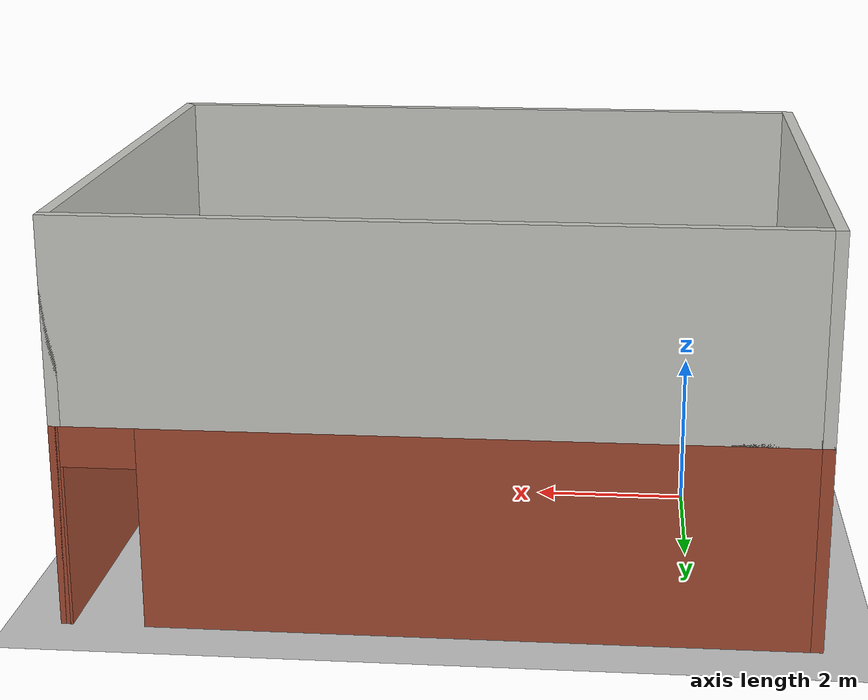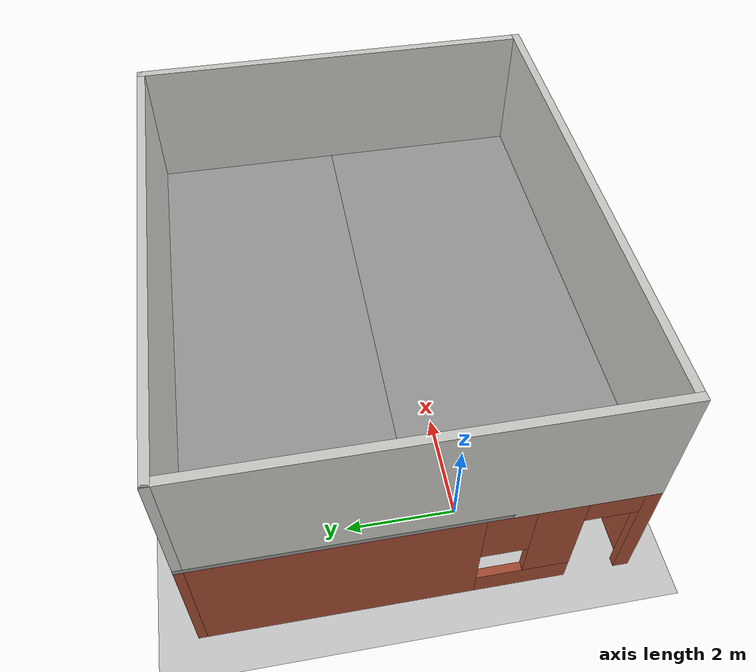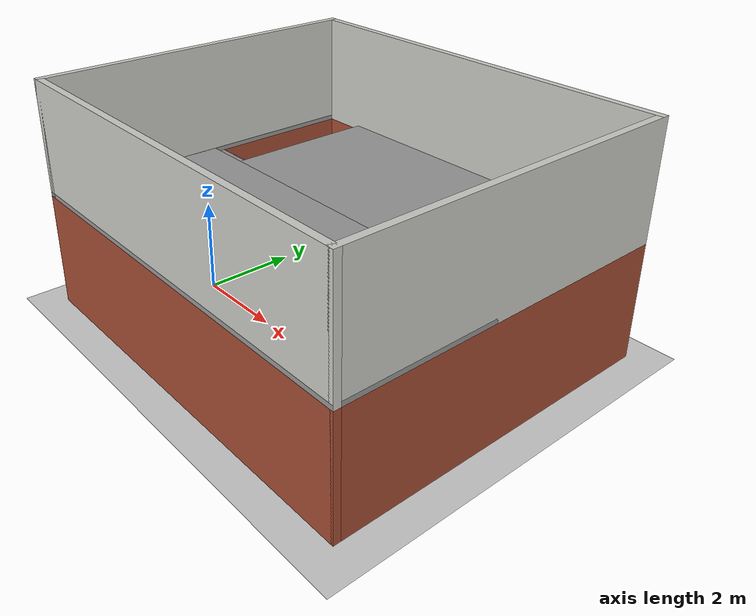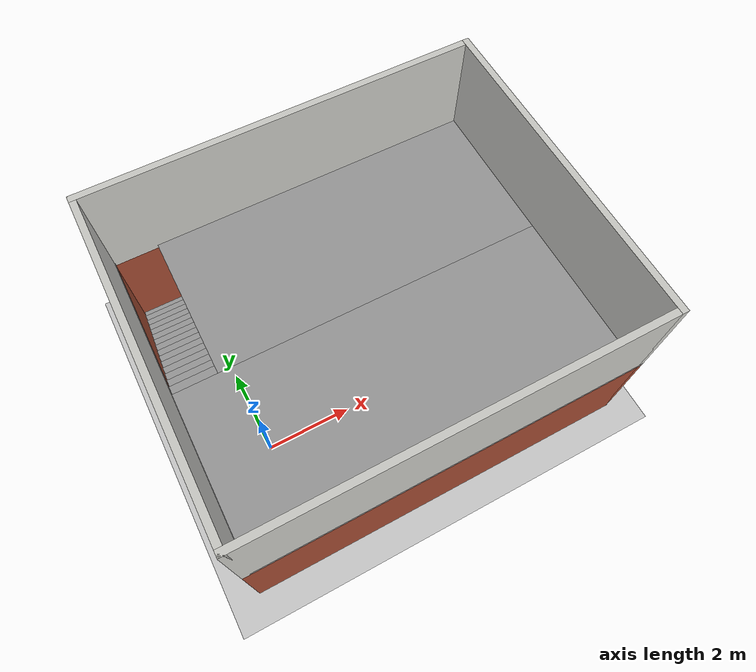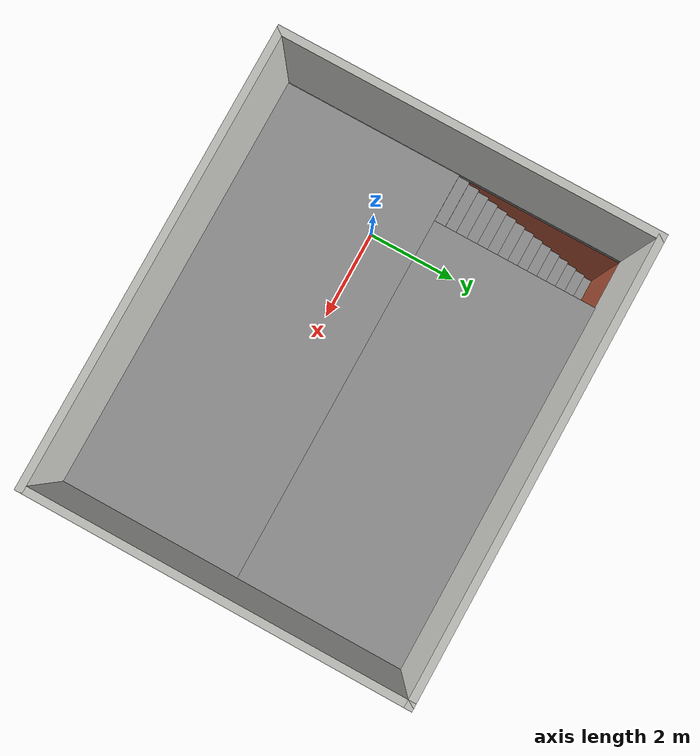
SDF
<sdf version="1.7">
 <world name="default">
  <light name="sun" type="directional">
   <pose>0 0 10 0 -0 0</pose>
   <diffuse>0.8 0.8 0.8 1</diffuse>
   <specular>0.2 0.2 0.2 1</specular>
   <attenuation>
    <range>1000</range>
    <constant>0.9</constant>
    <linear>0.01</linear>
    <quadratic>0.001</quadratic>
   </attenuation>
   <direction>-0.5 0.1 -0.9</direction>
   <spot><inner_angle>0</inner_angle><outer_angle>0</outer_angle><falloff>0</falloff></spot>
  </light>
  <model name="ground_plane">
   <static>1</static>
   <link name="link">
    <collision name="collision">
     <geometry><plane><normal>0 0 1</normal><size>100 100</size></plane></geometry>
     <surface>
      <contact><collide_bitmask>65535</collide_bitmask></contact>
      <friction><ode><mu>100</mu><mu2>50</mu2></ode></friction>
     </surface>
    </collision>
    <visual name="visual">
     <cast_shadows>0</cast_shadows>
     <geometry><plane><normal>0 0 1</normal><size>100 100</size></plane></geometry>
     <material>
      <script><uri>file://media/materials/scripts/gazebo.material</uri><name>Gazebo/Grey</name></script>
     </material>
    </visual>
   </link>
  </model>
  <gravity>0 0 -9.8</gravity>
  <magnetic_field>6e-06 2.3e-05 -4.2e-05</magnetic_field>
  <atmosphere type="adiabatic"/>
  <physics type="ode">
   <max_step_size>0.001</max_step_size>
   <real_time_factor>1</real_time_factor>
   <real_time_update_rate>1000</real_time_update_rate>
  </physics>
  <scene><ambient>0.4 0.4 0.4 1</ambient><background>0.7 0.7 0.7 1</background><shadows>1</shadows></scene>
  <spherical_coordinates>
   <surface_model>EARTH_WGS84</surface_model>
   <latitude_deg>0</latitude_deg>
   <longitude_deg>0</longitude_deg>
   <elevation>0</elevation>
   <heading_deg>0</heading_deg>
  </spherical_coordinates>
  <model name="2floor">
   <pose>2.985 0.975 0 0 -0 0</pose>
   <link name="Floor_0">
    <pose>0 0 2.5 0 -0 0</pose>
    <visual name="Floor_0_Visual_0">
     <pose>-4.42044 0 0.05 0 -0 0</pose>
     <geometry><box><size>0.159129 7.5 0.1</size></box></geometry>
     <material>
      <script><uri>file://media/materials/scripts/gazebo.material</uri><name>Gazebo/Grey</name></script>
      <ambient>1 1 1 1</ambient>
     </material>
     <meta><layer>1</layer></meta>
    </visual>
    <collision name="Floor_0_Collision_0">
     <geometry><box><size>0.159129 7.5 0.1</size></box></geometry>
     <pose>-4.42044 0 0.05 0 -0 0</pose>
    </collision>
    <visual name="Floor_0_Visual_1">
     <pose>0.079564 -1.81003 0.05 0 -0 0</pose>
     <geometry><box><size>8.84087 3.87995 0.1</size></box></geometry>
     <material>
      <script><uri>file://media/materials/scripts/gazebo.material</uri><name>Gazebo/Grey</name></script>
      <ambient>1 1 1 1</ambient>
     </material>
     <meta><layer>1</layer></meta>
    </visual>
    <collision name="Floor_0_Collision_1">
     <geometry><box><size>8.84087 3.87995 0.1</size></box></geometry>
     <pose>0.079564 -1.81003 0.05 0 -0 0</pose>
    </collision>
    <visual name="Floor_0_Visual_2">
     <pose>0.579564 1.93997 0.05 0 -0 0</pose>
     <geometry><box><size>7.84087 3.62005 0.1</size></box></geometry>
     <material>
      <script><uri>file://media/materials/scripts/gazebo.material</uri><name>Gazebo/Grey</name></script>
      <ambient>1 1 1 1</ambient>
     </material>
     <meta><layer>1</layer></meta>
    </visual>
    <collision name="Floor_0_Collision_2">
     <geometry><box><size>7.84087 3.62005 0.1</size></box></geometry>
     <pose>0.579564 1.93997 0.05 0 -0 0</pose>
    </collision>
    <visual name="Floor_0_Visual_3">
     <pose>-3.84087 3.68997 0.05 0 -0 0</pose>
     <geometry><box><size>1 0.120055 0.1</size></box></geometry>
     <material>
      <script><uri>file://media/materials/scripts/gazebo.material</uri><name>Gazebo/Grey</name></script>
      <ambient>1 1 1 1</ambient>
     </material>
     <meta><layer>1</layer></meta>
    </visual>
    <collision name="Floor_0_Collision_3">
     <geometry><box><size>1 0.120055 0.1</size></box></geometry>
     <pose>-3.84087 3.68997 0.05 0 -0 0</pose>
    </collision>
   </link>
   <link name="Stairs_0">
    <visual name="Stairs_0_Visual_0">
     <pose>-3.84087 3.51328 0.083333 0 -0 0</pose>
     <geometry><box><size>1 0.233333 0.166667</size></box></geometry>
     <material>
      <script><uri>file://media/materials/scripts/gazebo.material</uri><name>Gazebo/Grey</name></script>
      <ambient>1 1 1 1</ambient>
     </material>
     <meta><layer>0</layer></meta>
    </visual>
    <collision name="Stairs_0_Collision_0">
     <geometry><box><size>1 0.233333 0.166667</size></box></geometry>
     <pose>-3.84087 3.51328 0.083333 0 -0 0</pose>
    </collision>
    <visual name="Stairs_0_Visual_1">
     <pose>-3.84087 3.27995 0.25 0 -0 0</pose>
     <geometry><box><size>1 0.233333 0.166667</size></box></geometry>
     <material>
      <script><uri>file://media/materials/scripts/gazebo.material</uri><name>Gazebo/Grey</name></script>
      <ambient>1 1 1 1</ambient>
     </material>
     <meta><layer>0</layer></meta>
    </visual>
    <collision name="Stairs_0_Collision_1">
     <geometry><box><size>1 0.233333 0.166667</size></box></geometry>
     <pose>-3.84087 3.27995 0.25 0 -0 0</pose>
    </collision>
    <visual name="Stairs_0_Visual_2">
     <pose>-3.84087 3.04661 0.416667 0 -0 0</pose>
     <geometry><box><size>1 0.233333 0.166667</size></box></geometry>
     <material>
      <script><uri>file://media/materials/scripts/gazebo.material</uri><name>Gazebo/Grey</name></script>
      <ambient>1 1 1 1</ambient>
     </material>
     <meta><layer>0</layer></meta>
    </visual>
    <collision name="Stairs_0_Collision_2">
     <geometry><box><size>1 0.233333 0.166667</size></box></geometry>
     <pose>-3.84087 3.04661 0.416667 0 -0 0</pose>
    </collision>
    <visual name="Stairs_0_Visual_3">
     <pose>-3.84087 2.81328 0.583333 0 -0 0</pose>
     <geometry><box><size>1 0.233333 0.166667</size></box></geometry>
     <material>
      <script><uri>file://media/materials/scripts/gazebo.material</uri><name>Gazebo/Grey</name></script>
      <ambient>1 1 1 1</ambient>
     </material>
     <meta><layer>0</layer></meta>
    </visual>
    <collision name="Stairs_0_Collision_3">
     <geometry><box><size>1 0.233333 0.166667</size></box></geometry>
     <pose>-3.84087 2.81328 0.583333 0 -0 0</pose>
    </collision>
    <visual name="Stairs_0_Visual_4">
     <pose>-3.84087 2.57994 0.75 0 -0 0</pose>
     <geometry><box><size>1 0.233333 0.166667</size></box></geometry>
     <material>
      <script><uri>file://media/materials/scripts/gazebo.material</uri><name>Gazebo/Grey</name></script>
      <ambient>1 1 1 1</ambient>
     </material>
     <meta><layer>0</layer></meta>
    </visual>
    <collision name="Stairs_0_Collision_4">
     <geometry><box><size>1 0.233333 0.166667</size></box></geometry>
     <pose>-3.84087 2.57994 0.75 0 -0 0</pose>
    </collision>
    <visual name="Stairs_0_Visual_5">
     <pose>-3.84087 2.34661 0.916667 0 -0 0</pose>
     <geometry><box><size>1 0.233333 0.166667</size></box></geometry>
     <material>
      <script><uri>file://media/materials/scripts/gazebo.material</uri><name>Gazebo/Grey</name></script>
      <ambient>1 1 1 1</ambient>
     </material>
     <meta><layer>0</layer></meta>
    </visual>
    <collision name="Stairs_0_Collision_5">
     <geometry><box><size>1 0.233333 0.166667</size></box></geometry>
     <pose>-3.84087 2.34661 0.916667 0 -0 0</pose>
    </collision>
    <visual name="Stairs_0_Visual_6">
     <pose>-3.84087 2.11328 1.08333 0 -0 0</pose>
     <geometry><box><size>1 0.233333 0.166667</size></box></geometry>
     <material>
      <script><uri>file://media/materials/scripts/gazebo.material</uri><name>Gazebo/Grey</name></script>
      <ambient>1 1 1 1</ambient>
     </material>
     <meta><layer>0</layer></meta>
    </visual>
    <collision name="Stairs_0_Collision_6">
     <geometry><box><size>1 0.233333 0.166667</size></box></geometry>
     <pose>-3.84087 2.11328 1.08333 0 -0 0</pose>
    </collision>
    <visual name="Stairs_0_Visual_7">
     <pose>-3.84087 1.87994 1.25 0 -0 0</pose>
     <geometry><box><size>1 0.233333 0.166667</size></box></geometry>
     <material>
      <script><uri>file://media/materials/scripts/gazebo.material</uri><name>Gazebo/Grey</name></script>
      <ambient>1 1 1 1</ambient>
     </material>
     <meta><layer>0</layer></meta>
    </visual>
    <collision name="Stairs_0_Collision_7">
     <geometry><box><size>1 0.233333 0.166667</size></box></geometry>
     <pose>-3.84087 1.87994 1.25 0 -0 0</pose>
    </collision>
    <visual name="Stairs_0_Visual_8">
     <pose>-3.84087 1.64661 1.41667 0 -0 0</pose>
     <geometry><box><size>1 0.233333 0.166667</size></box></geometry>
     <material>
      <script><uri>file://media/materials/scripts/gazebo.material</uri><name>Gazebo/Grey</name></script>
      <ambient>1 1 1 1</ambient>
     </material>
     <meta><layer>0</layer></meta>
    </visual>
    <collision name="Stairs_0_Collision_8">
     <geometry><box><size>1 0.233333 0.166667</size></box></geometry>
     <pose>-3.84087 1.64661 1.41667 0 -0 0</pose>
    </collision>
    <visual name="Stairs_0_Visual_9">
     <pose>-3.84087 1.41328 1.58333 0 -0 0</pose>
     <geometry><box><size>1 0.233333 0.166667</size></box></geometry>
     <material>
      <script><uri>file://media/materials/scripts/gazebo.material</uri><name>Gazebo/Grey</name></script>
      <ambient>1 1 1 1</ambient>
     </material>
     <meta><layer>0</layer></meta>
    </visual>
    <collision name="Stairs_0_Collision_9">
     <geometry><box><size>1 0.233333 0.166667</size></box></geometry>
     <pose>-3.84087 1.41328 1.58333 0 -0 0</pose>
    </collision>
    <visual name="Stairs_0_Visual_10">
     <pose>-3.84087 1.17995 1.75 0 -0 0</pose>
     <geometry><box><size>1 0.233333 0.166667</size></box></geometry>
     <material>
      <script><uri>file://media/materials/scripts/gazebo.material</uri><name>Gazebo/Grey</name></script>
      <ambient>1 1 1 1</ambient>
     </material>
     <meta><layer>0</layer></meta>
    </visual>
    <collision name="Stairs_0_Collision_10">
     <geometry><box><size>1 0.233333 0.166667</size></box></geometry>
     <pose>-3.84087 1.17995 1.75 0 -0 0</pose>
    </collision>
    <visual name="Stairs_0_Visual_11">
     <pose>-3.84087 0.946612 1.91667 0 -0 0</pose>
     <geometry><box><size>1 0.233333 0.166667</size></box></geometry>
     <material>
      <script><uri>file://media/materials/scripts/gazebo.material</uri><name>Gazebo/Grey</name></script>
      <ambient>1 1 1 1</ambient>
     </material>
     <meta><layer>0</layer></meta>
    </visual>
    <collision name="Stairs_0_Collision_11">
     <geometry><box><size>1 0.233333 0.166667</size></box></geometry>
     <pose>-3.84087 0.946612 1.91667 0 -0 0</pose>
    </collision>
    <visual name="Stairs_0_Visual_12">
     <pose>-3.84087 0.713278 2.08333 0 -0 0</pose>
     <geometry><box><size>1 0.233333 0.166667</size></box></geometry>
     <material>
      <script><uri>file://media/materials/scripts/gazebo.material</uri><name>Gazebo/Grey</name></script>
      <ambient>1 1 1 1</ambient>
     </material>
     <meta><layer>0</layer></meta>
    </visual>
    <collision name="Stairs_0_Collision_12">
     <geometry><box><size>1 0.233333 0.166667</size></box></geometry>
     <pose>-3.84087 0.713278 2.08333 0 -0 0</pose>
    </collision>
    <visual name="Stairs_0_Visual_13">
     <pose>-3.84087 0.479945 2.25 0 -0 0</pose>
     <geometry><box><size>1 0.233333 0.166667</size></box></geometry>
     <material>
      <script><uri>file://media/materials/scripts/gazebo.material</uri><name>Gazebo/Grey</name></script>
      <ambient>1 1 1 1</ambient>
     </material>
     <meta><layer>0</layer></meta>
    </visual>
    <collision name="Stairs_0_Collision_13">
     <geometry><box><size>1 0.233333 0.166667</size></box></geometry>
     <pose>-3.84087 0.479945 2.25 0 -0 0</pose>
    </collision>
    <visual name="Stairs_0_Visual_14">
     <pose>-3.84087 0.246612 2.41667 0 -0 0</pose>
     <geometry><box><size>1 0.233333 0.166667</size></box></geometry>
     <material>
      <script><uri>file://media/materials/scripts/gazebo.material</uri><name>Gazebo/Grey</name></script>
      <ambient>1 1 1 1</ambient>
     </material>
     <meta><layer>0</layer></meta>
    </visual>
    <collision name="Stairs_0_Collision_14">
     <geometry><box><size>1 0.233333 0.166667</size></box></geometry>
     <pose>-3.84087 0.246612 2.41667 0 -0 0</pose>
    </collision>
   </link>
   <link name="Wall_0">
    <pose>-4.425 0 0 0 -0 -1.5708</pose>
    <visual name="Wall_0_Visual_0">
     <pose>-1.39758 0 1.25 0 -0 0</pose>
     <geometry><box><size>4.70484 0.15 2.5</size></box></geometry>
     <material>
      <script><uri>file://media/materials/scripts/gazebo.material</uri><name>Gazebo/Bricks</name></script>
      <ambient>1 1 1 1</ambient>
     </material>
     <meta><layer>0</layer></meta>
    </visual>
    <collision name="Wall_0_Collision_0">
     <geometry><box><size>4.70484 0.15 2.5</size></box></geometry>
     <pose>-1.39758 0 1.25 0 -0 0</pose>
    </collision>
    <visual name="Wall_0_Visual_1">
     <pose>3.6122 0 1.25 0 -0 0</pose>
     <geometry><box><size>0.275597 0.15 2.5</size></box></geometry>
     <material>
      <script><uri>file://media/materials/scripts/gazebo.material</uri><name>Gazebo/Bricks</name></script>
      <ambient>1 1 1 1</ambient>
     </material>
     <meta><layer>0</layer></meta>
    </visual>
    <collision name="Wall_0_Collision_1">
     <geometry><box><size>0.275597 0.15 2.5</size></box></geometry>
     <pose>3.6122 0 1.25 0 -0 0</pose>
    </collision>
    <visual name="Wall_0_Visual_2">
     <pose>1.76462 0 0.25 0 -0 0</pose>
     <geometry><box><size>1.61956 0.15 0.5</size></box></geometry>
     <material>
      <script><uri>file://media/materials/scripts/gazebo.material</uri><name>Gazebo/Bricks</name></script>
      <ambient>1 1 1 1</ambient>
     </material>
     <meta><layer>0</layer></meta>
    </visual>
    <collision name="Wall_0_Collision_2">
     <geometry><box><size>1.61956 0.15 0.5</size></box></geometry>
     <pose>1.76462 0 0.25 0 -0 0</pose>
    </collision>
    <visual name="Wall_0_Visual_3">
     <pose>2.16462 0 1.5 0 -0 0</pose>
     <geometry><box><size>0.819565 0.15 2</size></box></geometry>
     <material>
      <script><uri>file://media/materials/scripts/gazebo.material</uri><name>Gazebo/Bricks</name></script>
      <ambient>1 1 1 1</ambient>
     </material>
     <meta><layer>0</layer></meta>
    </visual>
    <collision name="Wall_0_Collision_3">
     <geometry><box><size>0.819565 0.15 2</size></box></geometry>
     <pose>2.16462 0 1.5 0 -0 0</pose>
    </collision>
    <visual name="Wall_0_Visual_4">
     <pose>1.35484 0 1.9 0 -0 0</pose>
     <geometry><box><size>0.8 0.15 1.2</size></box></geometry>
     <material>
      <script><uri>file://media/materials/scripts/gazebo.material</uri><name>Gazebo/Bricks</name></script>
      <ambient>1 1 1 1</ambient>
     </material>
     <meta><layer>0</layer></meta>
    </visual>
    <collision name="Wall_0_Collision_4">
     <geometry><box><size>0.8 0.15 1.2</size></box></geometry>
     <pose>1.35484 0 1.9 0 -0 0</pose>
    </collision>
    <visual name="Wall_0_Visual_5">
     <pose>3.0244 0 2.25 0 -0 0</pose>
     <geometry><box><size>0.9 0.15 0.5</size></box></geometry>
     <material>
      <script><uri>file://media/materials/scripts/gazebo.material</uri><name>Gazebo/Bricks</name></script>
      <ambient>1 1 1 1</ambient>
     </material>
     <meta><layer>0</layer></meta>
    </visual>
    <collision name="Wall_0_Collision_5">
     <geometry><box><size>0.9 0.15 0.5</size></box></geometry>
     <pose>3.0244 0 2.25 0 -0 0</pose>
    </collision>
   </link>
   <link name="Wall_1">
    <collision name="Wall_1_Collision">
     <geometry><box><size>9 0.15 2.5</size></box></geometry>
     <pose>0 0 1.25 0 -0 0</pose>
    </collision>
    <visual name="Wall_1_Visual">
     <pose>0 0 1.25 0 -0 0</pose>
     <geometry><box><size>9 0.15 2.5</size></box></geometry>
     <material>
      <script><uri>file://media/materials/scripts/gazebo.material</uri><name>Gazebo/Bricks</name></script>
      <ambient>1 1 1 1</ambient>
     </material>
     <meta><layer>0</layer></meta>
    </visual>
    <pose>0 -3.675 0 0 -0 0</pose>
   </link>
   <link name="Wall_10">
    <collision name="Wall_10_Collision">
     <geometry><box><size>7.5 0.15 2.5</size></box></geometry>
     <pose>0 0 1.25 0 -0 0</pose>
    </collision>
    <visual name="Wall_10_Visual">
     <pose>0 0 1.25 0 -0 0</pose>
     <geometry><box><size>7.5 0.15 2.5</size></box></geometry>
     <material>
      <script><uri>file://media/materials/scripts/gazebo.material</uri><name>Gazebo/CeilingTiled</name></script>
      <ambient>1 1 1 1</ambient>
     </material>
     <meta><layer>1</layer></meta>
    </visual>
    <pose>4.425 0 2.5 0 -0 -1.5708</pose>
   </link>
   <link name="Wall_3">
    <pose>0 3.675 0 0 -0 0</pose>
    <visual name="Wall_3_Visual_0">
     <pose>-0.508479 0 1.25 0 -0 0</pose>
     <geometry><box><size>7.98304 0.15 2.5</size></box></geometry>
     <material>
      <script><uri>file://media/materials/scripts/gazebo.material</uri><name>Gazebo/Bricks</name></script>
      <ambient>1 1 1 1</ambient>
     </material>
     <meta><layer>0</layer></meta>
    </visual>
    <collision name="Wall_3_Collision_0">
     <geometry><box><size>7.98304 0.15 2.5</size></box></geometry>
     <pose>-0.508479 0 1.25 0 -0 0</pose>
    </collision>
    <visual name="Wall_3_Visual_1">
     <pose>4.44152 0 1.25 0 -0 0</pose>
     <geometry><box><size>0.116958 0.15 2.5</size></box></geometry>
     <material>
      <script><uri>file://media/materials/scripts/gazebo.material</uri><name>Gazebo/Bricks</name></script>
      <ambient>1 1 1 1</ambient>
     </material>
     <meta><layer>0</layer></meta>
    </visual>
    <collision name="Wall_3_Collision_1">
     <geometry><box><size>0.116958 0.15 2.5</size></box></geometry>
     <pose>4.44152 0 1.25 0 -0 0</pose>
    </collision>
    <visual name="Wall_3_Visual_2">
     <pose>3.93304 0 2.25 0 -0 0</pose>
     <geometry><box><size>0.9 0.15 0.5</size></box></geometry>
     <material>
      <script><uri>file://media/materials/scripts/gazebo.material</uri><name>Gazebo/Bricks</name></script>
      <ambient>1 1 1 1</ambient>
     </material>
     <meta><layer>0</layer></meta>
    </visual>
    <collision name="Wall_3_Collision_2">
     <geometry><box><size>0.9 0.15 0.5</size></box></geometry>
     <pose>3.93304 0 2.25 0 -0 0</pose>
    </collision>
   </link>
   <link name="Wall_5">
    <collision name="Wall_5_Collision">
     <geometry><box><size>7.5 0.15 2.5</size></box></geometry>
     <pose>0 0 1.25 0 -0 0</pose>
    </collision>
    <visual name="Wall_5_Visual">
     <pose>0 0 1.25 0 -0 0</pose>
     <geometry><box><size>7.5 0.15 2.5</size></box></geometry>
     <material>
      <script><uri>file://media/materials/scripts/gazebo.material</uri><name>Gazebo/Bricks</name></script>
      <ambient>1 1 1 1</ambient>
     </material>
     <meta><layer>0</layer></meta>
    </visual>
    <pose>4.425 0 0 0 -0 -1.5708</pose>
   </link>
   <link name="Wall_7">
    <collision name="Wall_7_Collision">
     <geometry><box><size>7.5 0.15 2.5</size></box></geometry>
     <pose>0 0 1.25 0 -0 0</pose>
    </collision>
    <visual name="Wall_7_Visual">
     <pose>0 0 1.25 0 -0 0</pose>
     <geometry><box><size>7.5 0.15 2.5</size></box></geometry>
     <material>
      <script><uri>file://media/materials/scripts/gazebo.material</uri><name>Gazebo/CeilingTiled</name></script>
      <ambient>1 1 1 1</ambient>
     </material>
     <meta><layer>1</layer></meta>
    </visual>
    <pose>-4.425 0 2.5 0 -0 -1.5708</pose>
   </link>
   <link name="Wall_8">
    <collision name="Wall_8_Collision">
     <geometry><box><size>9 0.15 2.5</size></box></geometry>
     <pose>0 0 1.25 0 -0 0</pose>
    </collision>
    <visual name="Wall_8_Visual">
     <pose>0 0 1.25 0 -0 0</pose>
     <geometry><box><size>9 0.15 2.5</size></box></geometry>
     <material>
      <script><uri>file://media/materials/scripts/gazebo.material</uri><name>Gazebo/CeilingTiled</name></script>
      <ambient>1 1 1 1</ambient>
     </material>
     <meta><layer>1</layer></meta>
    </visual>
    <pose>0 -3.675 2.5 0 -0 0</pose>
   </link>
   <link name="Wall_9">
    <collision name="Wall_9_Collision">
     <geometry><box><size>9 0.15 2.5</size></box></geometry>
     <pose>0 0 1.25 0 -0 0</pose>
    </collision>
    <visual name="Wall_9_Visual">
     <pose>0 0 1.25 0 -0 0</pose>
     <geometry><box><size>9 0.15 2.5</size></box></geometry>
     <material>
      <script><uri>file://media/materials/scripts/gazebo.material</uri><name>Gazebo/CeilingTiled</name></script>
      <ambient>1 1 1 1</ambient>
     </material>
     <meta><layer>1</layer></meta>
    </visual>
    <pose>0 3.675 2.5 0 -0 0</pose>
   </link>
   <static>1</static>
  </model>
 </world>
</sdf>
